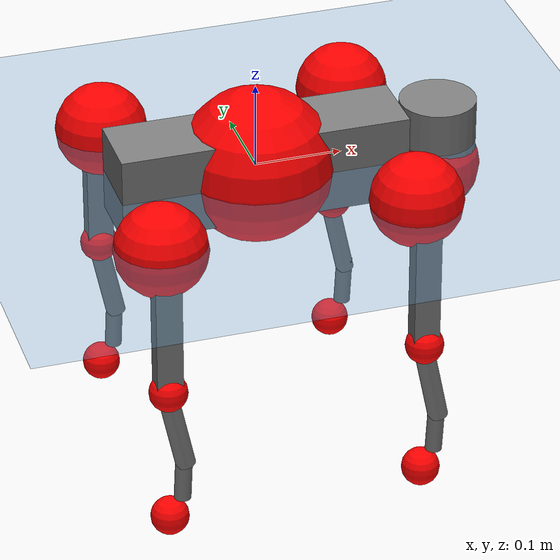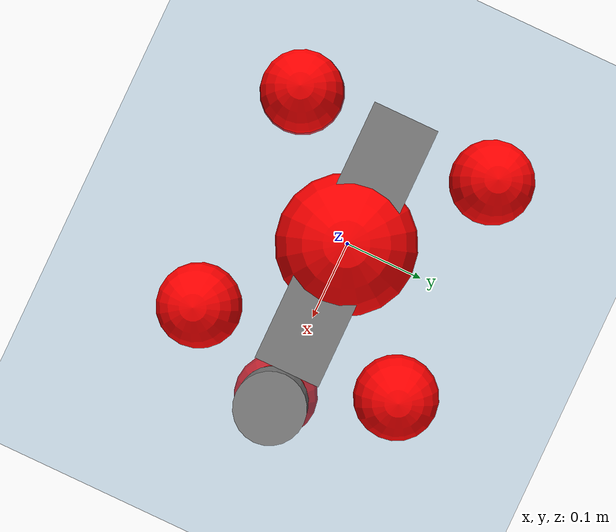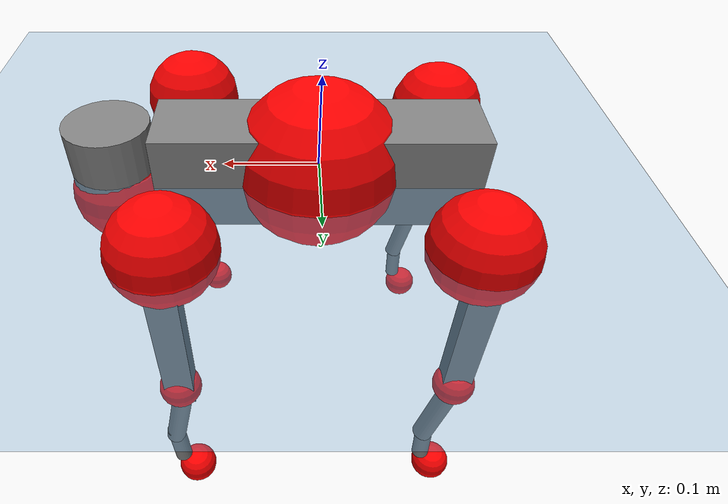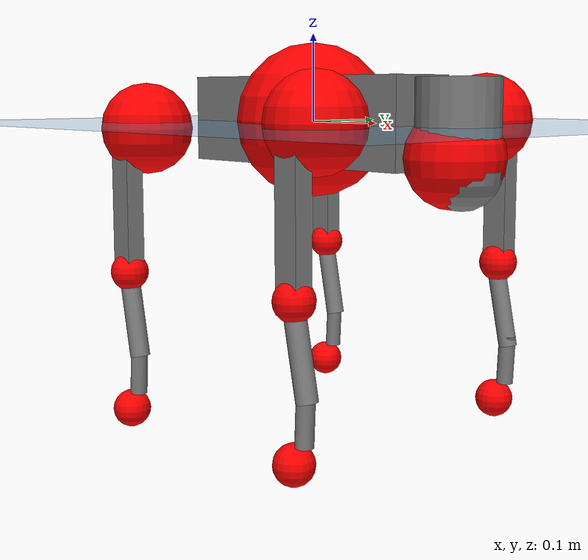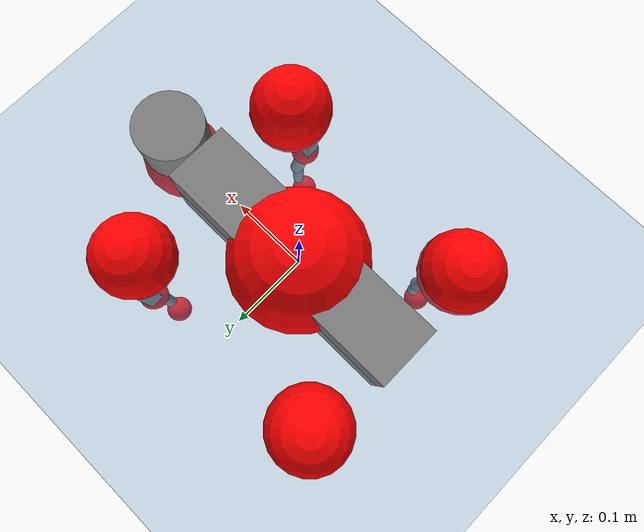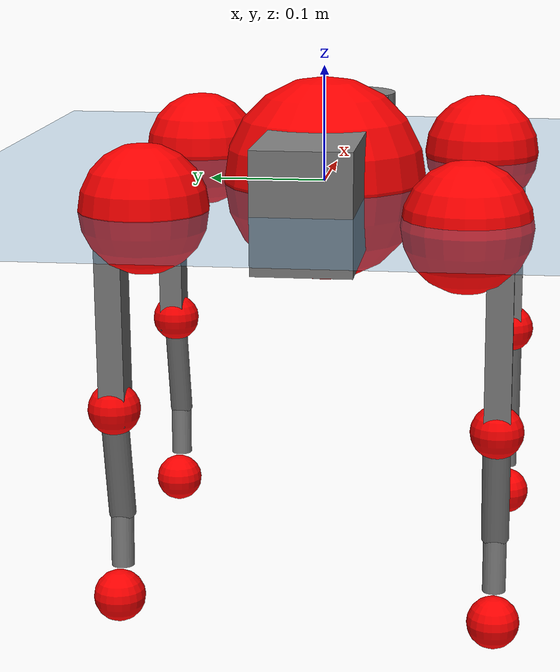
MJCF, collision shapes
<mujoco model="go2">
  <compiler angle="radian" assetdir="assets" balanceinertia="true" inertiafromgeom="false"/>

  <option timestep="0.005" density="1.2" viscosity="2e-05"/>

  <size nkey="1"/>

  <visual>
    <quality shadowsize="8192"/>
    <map shadowclip="0.5"/>
  </visual>

  <default>
    <default class="/">
      <geom contype="0" conaffinity="0" group="1" solref="-1000 -80"/>
      <site size="0.01 0.005 0.005" group="5"/>
      <general forcelimited="true" biastype="affine" gainprm="20" biasprm="0 -20 -0.5"/>
      <default class="go2">
        <joint armature="0.01" damping="0.01" frictionloss="0.2"/>
        <geom condim="1" margin="0.001"/>
        <default class="visual">
          <geom type="mesh" group="2"/>
        </default>
        <default class="collision">
          <geom group="3"/>
          <default class="foot">
            <geom size="0.022 0 0" condim="6" priority="1" friction="0.8 0.02 0.01" solimp="0.015 1 0.022"/>
          </default>
        </default>
        <default class="reward_collision_sphere">
          <geom group="5" rgba="1 0 0 1"/>
        </default>
      </default>
    </default>
  </default>

  <asset>
    <texture type="skybox" colorspace="auto" name="//unnamed_texture_0" builtin="gradient" rgb1="0.95 0.95 0.95" rgb2="0.95 0.95 0.95" width="100" height="600"/>
    <texture type="2d" colorspace="auto" name="texplane" builtin="checker" rgb1="0.345 0.575 0.748" rgb2="0.345 0.575 0.748" markrgb="1 1 1" width="512" height="512"/>
    <material name="MatPlane" class="/" texture="texplane" texuniform="true" texrepeat="2 2" specular="0.9"/>
    <material name="metal" class="/" rgba="0.9 0.95 0.95 1"/>
    <material name="black" class="/" rgba="0 0 0 1"/>
    <material name="white" class="/"/>
    <material name="gray" class="/" rgba="0.671705 0.692426 0.77427 1"/>
    <mesh name="base_0" class="/" file="base_0.obj"/>
    <mesh name="base_1" class="/" file="base_1.obj"/>
    <mesh name="base_2" class="/" file="base_2.obj"/>
    <mesh name="base_3" class="/" file="base_3.obj"/>
    <mesh name="base_4" class="/" file="base_4.obj"/>
    <mesh name="hip_0" class="/" file="hip_0.obj"/>
    <mesh name="hip_1" class="/" file="hip_1.obj"/>
    <mesh name="thigh_0" class="/" file="thigh_0.obj"/>
    <mesh name="thigh_1" class="/" file="thigh_1.obj"/>
    <mesh name="thigh_mirror_0" class="/" file="thigh_mirror_0.obj"/>
    <mesh name="thigh_mirror_1" class="/" file="thigh_mirror_1.obj"/>
    <mesh name="calf_0" class="/" file="calf_0.obj"/>
    <mesh name="calf_1" class="/" file="calf_1.obj"/>
    <mesh name="calf_mirror_0" class="/" file="calf_mirror_0.obj"/>
    <mesh name="calf_mirror_1" class="/" file="calf_mirror_1.obj"/>
    <mesh name="foot" class="/" file="foot.obj"/>
  </asset>

  <worldbody>
    <geom name="floor" class="/" size="100 100 0.125" type="plane" group="0" material="MatPlane"/>
    <light name="toplight_shadow" class="/" pos="0 0 5" dir="0.0990148 0.0990148 -0.990148" type="directional" ambient="0.04 0.04 0.04" diffuse="0.55 0.55 0.55" specular="0.12 0.12 0.12"/>
    <light name="toplight_fill" class="/" pos="0 0 5" dir="0.0990148 0.0990148 -0.990148" type="directional" castshadow="false" ambient="0.04 0.04 0.04" diffuse="0.3 0.3 0.3" specular="0.08 0.08 0.08"/>
    <body name="trunk" childclass="go2" pos="0.000886284 -0.000469638 0.00176063" quat="1 -0.000191385 -0.000433199 3.71783e-05">
      <inertial pos="0.0166985 0.000185459 -0.00403412" quat="0.00104363 0.711724 -0.000195509 0.702459" mass="4.61881" diaginertia="0.0247547 0.169444 0.00685878"/>
      <joint name="//unnamed_joint_0" type="free" armature="0" damping="0" frictionloss="0"/>
      <geom name="//unnamed_geom_1" class="visual" material="black" mesh="base_0"/>
      <geom name="//unnamed_geom_2" class="visual" material="black" mesh="base_1"/>
      <geom name="//unnamed_geom_3" class="visual" material="black" mesh="base_2"/>
      <geom name="//unnamed_geom_4" class="visual" material="white" mesh="base_3"/>
      <geom name="//unnamed_geom_5" class="visual" material="gray" mesh="base_4"/>
      <geom name="trunk_1" class="collision" size="0.166839 0.0414658 0.0505572" type="box"/>
      <geom name="trunk_2" class="collision" size="0.0443484 0.0399136" pos="0.214305 0 0.00781394" type="cylinder"/>
      <geom name="trunk_3" class="collision" size="0.0416875" pos="0.220321 0 -0.0468837"/>
      <geom name="//unnamed_geom_9" class="reward_collision_sphere" size="0.0886968"/>
      <geom name="//unnamed_geom_10" class="reward_collision_sphere" size="0.0532181" pos="0.210545 0 -0.0351627"/>
      <site name="imu" pos="-0.0102452 0.0108212 0.0291183" size="0.00886968"/>
      <camera name="track" pos="0 -2.25512 0" quat="0.707107 0.707107 0 0" mode="trackcom"/>
      <camera name="ego_camera" pos="0.234608 0 0.0351627" quat="-0.5 -0.5 0.5 0.5"/>
      <body name="FL_hip" pos="0.144405 0.0562943 0.000739862" quat="1 -4.92558e-05 -4.93734e-05 -1.72336e-05">
        <inertial pos="-0.00360512 0.00120492 0.00209896" quat="0.496593 0.502032 0.499327 0.502028" mass="0.457354" diaginertia="0.000209629 0.00102253 0.00013639"/>
        <joint name="FL_hip_joint" pos="0 0 0" axis="0.999966 0.000271103 0.00821172" range="-1.04506 1.09671" armature="0.00879558" damping="0.00260653" frictionloss="0.198887"/>
        <geom name="//unnamed_geom_11" class="visual" material="metal" mesh="hip_0"/>
        <geom name="//unnamed_geom_12" class="visual" material="gray" mesh="hip_1"/>
        <geom name="//unnamed_geom_13" class="collision" size="0.0408005 0.0177394" pos="0 0.090205 0" quat="0.707107 0.707107 0 0" type="cylinder"/>
        <geom name="//unnamed_geom_14" class="reward_collision_sphere" size="0.0532181" pos="0 0.0789293 0"/>
        <body name="FL_thigh" pos="-0.000742857 0.110506 -0.00146627" quat="1 0.000199751 4.35641e-05 -0.000287645">
          <inertial pos="-0.00437372 -0.0256496 -0.0248339" quat="0.834149 0.0736026 -0.0199793 0.54624" mass="0.826965" diaginertia="0.0014672 0.010687 0.000254629"/>
          <joint name="FL_thigh_joint" pos="0 0 0" axis="-0.00489711 0.999988 0.000460149" stiffness="0.00210181" range="-1.61475 3.50036" armature="0.00838055" damping="0.013404" frictionloss="0.1763"/>
          <geom name="//unnamed_geom_15" class="visual" material="metal" mesh="thigh_0"/>
          <geom name="//unnamed_geom_16" class="visual" material="gray" mesh="thigh_1"/>
          <geom name="//unnamed_geom_17" class="collision" size="0.0944621 0.0108654 0.0150785" pos="0 0 -0.0832185" quat="0.707107 0 0.707107 0" type="box"/>
          <body name="FL_calf" pos="0.000818212 -0.00181261 -0.167311" quat="1 0.000104064 -8.44699e-06 -2.68479e-05">
            <inertial pos="0.0074475 0.000489986 -0.108593" quat="0.709852 0.00422878 -0.00403642 0.704326" mass="0.168499" diaginertia="0.000365138 0.00270676 1.57385e-05"/>
            <joint name="FL_calf_joint" pos="0 0 0" axis="0.00162777 0.999991 -0.00383675" range="-2.6716 -0.793587" armature="0.00792204" damping="0" frictionloss="0.158939"/>
            <geom name="//unnamed_geom_18" class="visual" material="gray" mesh="calf_0"/>
            <geom name="//unnamed_geom_19" class="visual" material="black" mesh="calf_1"/>
            <geom name="FL_calf0" class="collision" size="0.0106436 0.0532181" pos="0.00601558 0 -0.0468837" quat="0.994493 0 -0.104807 0" type="cylinder"/>
            <geom name="//unnamed_geom_21" class="collision" size="0.00975665 0.0288265" pos="0.0150389 0 -0.115646" quat="0.999688 0 0.0249974 0" type="cylinder"/>
            <geom name="//unnamed_geom_22" class="visual" pos="0 0 -0.166437" quat="1 0 0 0" material="black" mesh="foot"/>
            <geom name="FL_foot" class="foot" size="0.0168741" pos="-0.00150389 0 -0.166437"/>
            <geom name="//unnamed_geom_24" class="reward_collision_sphere" size="0.0221742"/>
            <geom name="//unnamed_geom_25" class="reward_collision_sphere" size="0.0221742" pos="-0.00150389 0 -0.166437"/>
            <site name="FL_foot" class="foot" pos="-0.00150389 0 -0.166437" size="0.00886968"/>
          </body>
        </body>
      </body>
      <body name="FR_hip" pos="0.144281 -0.0531185 0.00258445" quat="0.999999 0.000639325 -0.000444939 0.000686991">
        <inertial pos="-0.0063462 -0.00240612 -0.00187726" quat="0.494717 0.513725 0.497574 0.493723" mass="0.446474" diaginertia="0.000209738 0.00106313 0.000137114"/>
        <joint name="FR_hip_joint" pos="0 0 0" axis="0.999939 -0.0098862 -0.00500219" stiffness="0.00515005" range="-1.01642 1.0005" armature="0.00981222" damping="0.00164524" frictionloss="0.193471"/>
        <geom name="//unnamed_geom_26" class="visual" pos="0 3.01567e-09 1.29348e-07" quat="4.63268e-05 1 0 0" material="metal" mesh="hip_0"/>
        <geom name="//unnamed_geom_27" class="visual" pos="0 4.88876e-09 -3.19928e-07" quat="4.63268e-05 1 0 0" material="gray" mesh="hip_1"/>
        <geom name="//unnamed_geom_28" class="collision" size="0.0408005 0.0177394" pos="0 -0.090205 0" quat="0.707107 0.707107 0 0" type="cylinder"/>
        <geom name="//unnamed_geom_29" class="reward_collision_sphere" size="0.0532181" pos="0 -0.0789293 0"/>
        <body name="FR_thigh" pos="0.00075755 -0.109718 -0.00409288" quat="0.999999 -0.000613531 -0.00111129 -0.000345414">
          <inertial pos="-0.0047783 0.0241383 -0.0286123" quat="0.556593 -0.0186843 0.095297 0.82509" mass="0.808167" diaginertia="0.00140863 0.0105159 0.000263023"/>
          <joint name="FR_thigh_joint" pos="0 0 0" axis="0.000113117 -1 0.000467841" range="-3.49343 1.5249" armature="0.00756781" damping="0.0245789" frictionloss="0.171192"/>
          <geom name="//unnamed_geom_30" class="visual" material="metal" mesh="thigh_mirror_0"/>
          <geom name="//unnamed_geom_31" class="visual" material="gray" mesh="thigh_mirror_1"/>
          <geom name="//unnamed_geom_32" class="collision" size="0.0944621 0.0108654 0.0150785" pos="0 0 -0.0832185" quat="0.707107 0 0.707107 0" type="box"/>
          <body name="FR_calf" pos="0.000903723 -0.000238765 -0.168149" quat="1 0.000729616 7.47651e-05 0.00061693">
            <inertial pos="0.00235829 0.0014296 -0.110227" quat="0.704336 -0.00364255 0.0131921 0.709735" mass="0.167086" diaginertia="0.00036314 0.00268661 1.52629e-05"/>
            <joint name="FR_calf_joint" pos="0 0 0" axis="0.00695358 -0.999975 -0.00148375" range="0.853962 2.7141" armature="0.00909377" damping="0.00470978" frictionloss="0.154783"/>
            <geom name="//unnamed_geom_33" class="visual" material="gray" mesh="calf_mirror_0"/>
            <geom name="//unnamed_geom_34" class="visual" material="black" mesh="calf_mirror_1"/>
            <geom name="FR_calf0" class="collision" size="0.0115306 0.0532181" pos="0.00751947 0 -0.0468837" quat="0.995004 0 -0.0998334 0" type="cylinder"/>
            <geom name="//unnamed_geom_36" class="collision" size="0.00975665 0.0288265" pos="0.0150389 0 -0.115646" quat="0.999688 0 0.0249974 0" type="cylinder"/>
            <geom name="//unnamed_geom_37" class="visual" pos="0 0 -0.166437" quat="1 0 0 0" material="black" mesh="foot"/>
            <geom name="FR_foot" class="foot" size="0.0212301" pos="-0.00150389 0 -0.166437"/>
            <geom name="//unnamed_geom_39" class="reward_collision_sphere" size="0.0221742"/>
            <geom name="//unnamed_geom_40" class="reward_collision_sphere" size="0.0221742" pos="-0.00150389 0 -0.166437"/>
            <site name="FR_foot" class="foot" pos="-0.00150389 0 -0.166437" size="0.00886968"/>
          </body>
        </body>
      </body>
      <body name="RL_hip" pos="-0.145625 0.050868 -0.00143938" quat="0.999999 -0.000372059 0.000270169 -0.00129826">
        <inertial pos="0.00154751 0.00272868 0.00174671" quat="0.503454 0.498186 0.507492 0.49071" mass="0.456852" diaginertia="0.000200072 0.00109262 0.000134491"/>
        <joint name="RL_hip_joint" pos="0 0 0" axis="-0.999983 -0.00226072 -0.00544011" stiffness="0.00405868" range="-1.04436 1.03116" armature="0.00894936" damping="0.0133577" frictionloss="0.176443"/>
        <geom name="//unnamed_geom_41" class="visual" pos="2.5653e-10 0 5.02858e-08" quat="4.63268e-05 0 1 0" material="metal" mesh="hip_0"/>
        <geom name="//unnamed_geom_42" class="visual" pos="4.15866e-10 0 4.45963e-08" quat="4.63268e-05 0 1 0" material="gray" mesh="hip_1"/>
        <geom name="//unnamed_geom_43" class="collision" size="0.0408005 0.0177394" pos="0 0.090205 0" quat="0.707107 0.707107 0 0" type="cylinder"/>
        <geom name="//unnamed_geom_44" class="reward_collision_sphere" size="0.0532181" pos="0 0.0789293 0"/>
        <body name="RL_thigh" pos="0.000668006 0.107813 -0.00398827" quat="1 0.000480997 7.89232e-05 -0.000403063">
          <inertial pos="-0.00516335 -0.026229 -0.0233978" quat="0.829522 0.0850922 -0.0192733 0.551617" mass="0.781214" diaginertia="0.00136351 0.010426 0.000251775"/>
          <joint name="RL_thigh_joint" pos="0 0 0" axis="-0.00640264 0.999908 -0.0119571" stiffness="0.00995611" range="-0.559004 4.52853" armature="0.00846014" damping="0.025445" frictionloss="0.200992"/>
          <geom name="//unnamed_geom_45" class="visual" material="metal" mesh="thigh_0"/>
          <geom name="//unnamed_geom_46" class="visual" material="gray" mesh="thigh_1"/>
          <geom name="//unnamed_geom_47" class="collision" size="0.0944621 0.0108654 0.0150785" pos="0 0 -0.0832185" quat="0.707107 0 0.707107 0" type="box"/>
          <body name="RL_calf" pos="-5.15282e-06 0.00111117 -0.166133" quat="1 0.000100206 6.49989e-06 0.000333528">
            <inertial pos="0.00622381 0.000792699 -0.108294" quat="0.710275 -0.000967115 -0.00604521 0.703898" mass="0.164456" diaginertia="0.000353934 0.00254157 1.57317e-05"/>
            <joint name="RL_calf_joint" pos="0 0 0" axis="-0.0123562 0.999917 0.00355843" range="-2.69642 -0.782636" armature="0.00852197" damping="0.0179616" frictionloss="0.175842"/>
            <geom name="//unnamed_geom_48" class="visual" material="gray" mesh="calf_0"/>
            <geom name="//unnamed_geom_49" class="visual" material="black" mesh="calf_1"/>
            <geom name="RL_calf0" class="collision" size="0.0115306 0.0532181" pos="0.00751947 0 -0.0468837" quat="0.995004 0 -0.0998334 0" type="cylinder"/>
            <geom name="//unnamed_geom_51" class="collision" size="0.00975665 0.0288265" pos="0.0150389 0 -0.115646" quat="0.999688 0 0.0249974 0" type="cylinder"/>
            <geom name="//unnamed_geom_52" class="visual" pos="0 0 -0.166437" quat="1 0 0 0" material="black" mesh="foot"/>
            <geom name="RL_foot" class="foot" size="0.0212486" pos="-0.00150389 0 -0.166437"/>
            <geom name="//unnamed_geom_54" class="reward_collision_sphere" size="0.0221742"/>
            <geom name="//unnamed_geom_55" class="reward_collision_sphere" size="0.0221742" pos="-0.00150389 0 -0.166437"/>
            <site name="RL_foot" class="foot" pos="-0.00150389 0 -0.166437" size="0.00886968"/>
          </body>
        </body>
      </body>
      <body name="RR_hip" pos="-0.147769 -0.0511705 -0.010397" quat="1 -0.000501793 0.000143443 -0.000481008">
        <inertial pos="0.00339597 -0.00400474 0.0015449" quat="0.499082 0.500111 0.49665 0.504129" mass="0.478767" diaginertia="0.000204742 0.00104973 0.000140826"/>
        <joint name="RR_hip_joint" pos="0 0 0" axis="-0.999917 -0.00171165 0.0127383" range="-1.09833 1.05004" armature="0.00877196" damping="0" frictionloss="0.155468"/>
        <geom name="//unnamed_geom_56" class="visual" pos="-2.43526e-10 3.01567e-09 -7.90625e-08" quat="2.14617e-09 4.63268e-05 4.63268e-05 -1" material="metal" mesh="hip_0"/>
        <geom name="//unnamed_geom_57" class="visual" pos="-4.4803e-10 4.88876e-09 3.64524e-07" quat="2.14617e-09 4.63268e-05 4.63268e-05 -1" material="gray" mesh="hip_1"/>
        <geom name="//unnamed_geom_58" class="collision" size="0.0408005 0.0177394" pos="0 -0.090205 0" quat="0.707107 0.707107 0 0" type="cylinder"/>
        <geom name="//unnamed_geom_59" class="reward_collision_sphere" size="0.0532181" pos="0 -0.0789293 0"/>
        <body name="RR_thigh" pos="-0.00255126 -0.10607 -0.00174261" quat="0.999999 -0.00114241 -0.000226585 5.55675e-05">
          <inertial pos="-0.00173947 0.022563 -0.0230755" quat="0.5511 -0.0115493 0.0849198 0.830027" mass="0.799288" diaginertia="0.00138318 0.0104029 0.000254431"/>
          <joint name="RR_thigh_joint" pos="0 0 0" axis="0.0137878 -0.999832 0.0120992" range="-4.54285 0.50578" armature="0.00852089" damping="0" frictionloss="0.155907"/>
          <geom name="//unnamed_geom_60" class="visual" material="metal" mesh="thigh_mirror_0"/>
          <geom name="//unnamed_geom_61" class="visual" material="gray" mesh="thigh_mirror_1"/>
          <geom name="//unnamed_geom_62" class="collision" size="0.0944621 0.0108654 0.0150785" pos="0 0 -0.0832185" quat="0.707107 0 0.707107 0" type="box"/>
          <body name="RR_calf" pos="0.000232243 0.000190823 -0.166481" quat="0.999999 -3.86171e-05 -0.00134634 9.59823e-05">
            <inertial pos="0.00705292 4.21827e-05 -0.1095" quat="0.70213 -0.00358558 0.00448377 0.712026" mass="0.168743" diaginertia="0.000360745 0.00281822 1.60733e-05"/>
            <joint name="RR_calf_joint" pos="0 0 0" axis="0.00212264 -0.999952 -0.00958039" stiffness="0.00144178" range="0.833932 2.67631" armature="0.0085897" damping="0.0149836" frictionloss="0.155093"/>
            <geom name="//unnamed_geom_63" class="visual" material="gray" mesh="calf_mirror_0"/>
            <geom name="//unnamed_geom_64" class="visual" material="black" mesh="calf_mirror_1"/>
            <geom name="RR_calf0" class="collision" size="0.0115306 0.0532181" pos="0.00751947 0 -0.0468837" quat="0.995004 0 -0.0998334 0" type="cylinder"/>
            <geom name="//unnamed_geom_66" class="collision" size="0.00975665 0.0288265" pos="0.0150389 0 -0.115646" quat="0.999688 0 0.0249974 0" type="cylinder"/>
            <geom name="//unnamed_geom_67" class="visual" pos="0 0 -0.166437" quat="1 0 0 0" material="black" mesh="foot"/>
            <geom name="RR_foot" class="foot" size="0.0194862" pos="-0.00150389 0 -0.166437"/>
            <geom name="//unnamed_geom_69" class="reward_collision_sphere" size="0.0221742"/>
            <geom name="//unnamed_geom_70" class="reward_collision_sphere" size="0.0221742" pos="-0.00150389 0 -0.166437"/>
            <site name="RR_foot" class="foot" pos="-0.00150389 0 -0.166437" size="0.00886968"/>
          </body>
        </body>
      </body>
    </body>
  </worldbody>

  <contact>
    <pair class="/" geom1="floor" geom2="FL_foot" name="//unnamed_contact_0"/>
    <pair class="/" geom1="floor" geom2="FR_foot" name="//unnamed_contact_1"/>
    <pair class="/" geom1="floor" geom2="RL_foot" name="//unnamed_contact_2"/>
    <pair class="/" geom1="floor" geom2="RR_foot" name="//unnamed_contact_3"/>
  </contact>

  <actuator>
    <general name="FL_hip" class="/" joint="FL_hip_joint" forcerange="-21.798 21.798" gainprm="18.7437" biasprm="0 -18.7437 -0.41339"/>
    <general name="FL_thigh" class="/" joint="FL_thigh_joint" forcerange="-22.3417 22.3417" gainprm="18.7437" biasprm="0 -18.7437 -0.41339"/>
    <general name="FL_calf" class="/" joint="FL_calf_joint" forcerange="-43.7044 43.7044" gainprm="18.7437" biasprm="0 -18.7437 -0.41339"/>
    <general name="FR_hip" class="/" joint="FR_hip_joint" forcerange="-19.7791 19.7791" gainprm="18.7437" biasprm="0 -18.7437 -0.41339"/>
    <general name="FR_thigh" class="/" joint="FR_thigh_joint" forcerange="-22.8295 22.8295" gainprm="18.7437" biasprm="0 -18.7437 -0.41339"/>
    <general name="FR_calf" class="/" joint="FR_calf_joint" forcerange="-41.2077 41.2077" gainprm="18.7437" biasprm="0 -18.7437 -0.41339"/>
    <general name="RL_hip" class="/" joint="RL_hip_joint" forcerange="-21.5363 21.5363" gainprm="18.7437" biasprm="0 -18.7437 -0.41339"/>
    <general name="RL_thigh" class="/" joint="RL_thigh_joint" forcerange="-22.3266 22.3266" gainprm="18.7437" biasprm="0 -18.7437 -0.41339"/>
    <general name="RL_calf" class="/" joint="RL_calf_joint" forcerange="-39.6405 39.6405" gainprm="18.7437" biasprm="0 -18.7437 -0.41339"/>
    <general name="RR_hip" class="/" joint="RR_hip_joint" forcerange="-21.1785 21.1785" gainprm="18.7437" biasprm="0 -18.7437 -0.41339"/>
    <general name="RR_thigh" class="/" joint="RR_thigh_joint" forcerange="-18.8575 18.8575" gainprm="18.7437" biasprm="0 -18.7437 -0.41339"/>
    <general name="RR_calf" class="/" joint="RR_calf_joint" forcerange="-43.447 43.447" gainprm="18.7437" biasprm="0 -18.7437 -0.41339"/>
  </actuator>

  <sensor>
    <gyro site="imu" name="imu_angular_velocity"/>
    <velocimeter site="imu" name="imu_linear_velocity"/>
    <framelinvel objtype="site" objname="FL_foot" name="FL_foot_global_linear_velocity"/>
    <framelinvel objtype="site" objname="FR_foot" name="FR_foot_global_linear_velocity"/>
    <framelinvel objtype="site" objname="RL_foot" name="RL_foot_global_linear_velocity"/>
    <framelinvel objtype="site" objname="RR_foot" name="RR_foot_global_linear_velocity"/>
  </sensor>

  <keyframe>
    <key name="home" qpos="0 0 0.325 1 0 0 0 0.1 0.8 -1.5 -0.1 -0.8 1.5 -0.1 0.8 -1.5 0.1 -0.8 1.5"/>
  </keyframe>
</mujoco>
